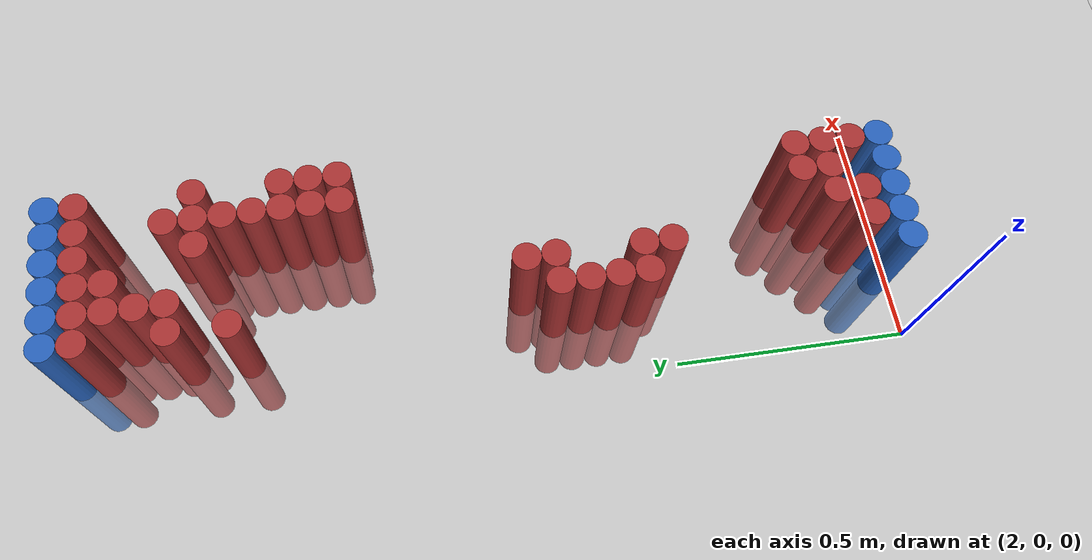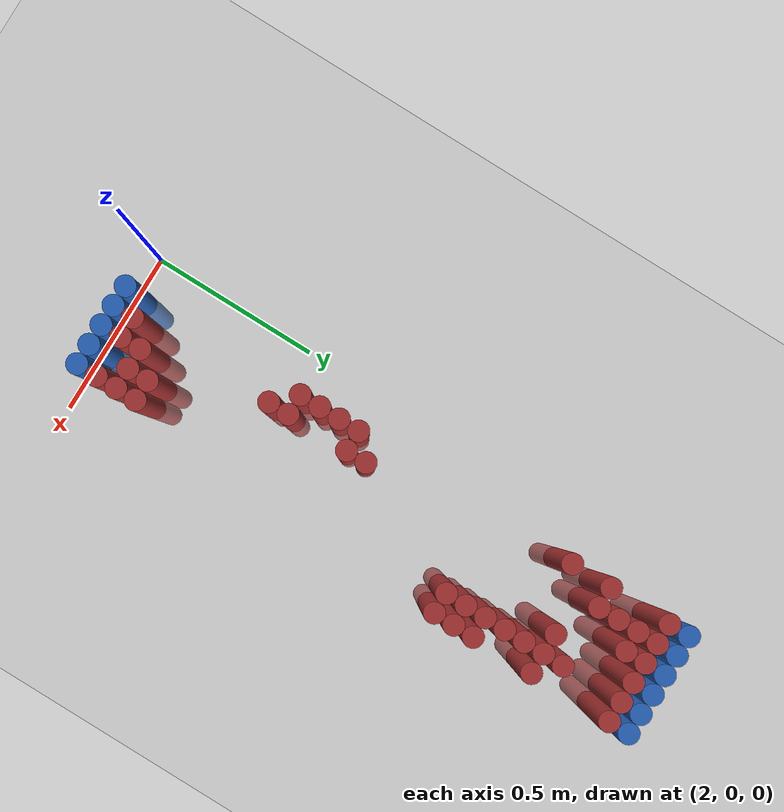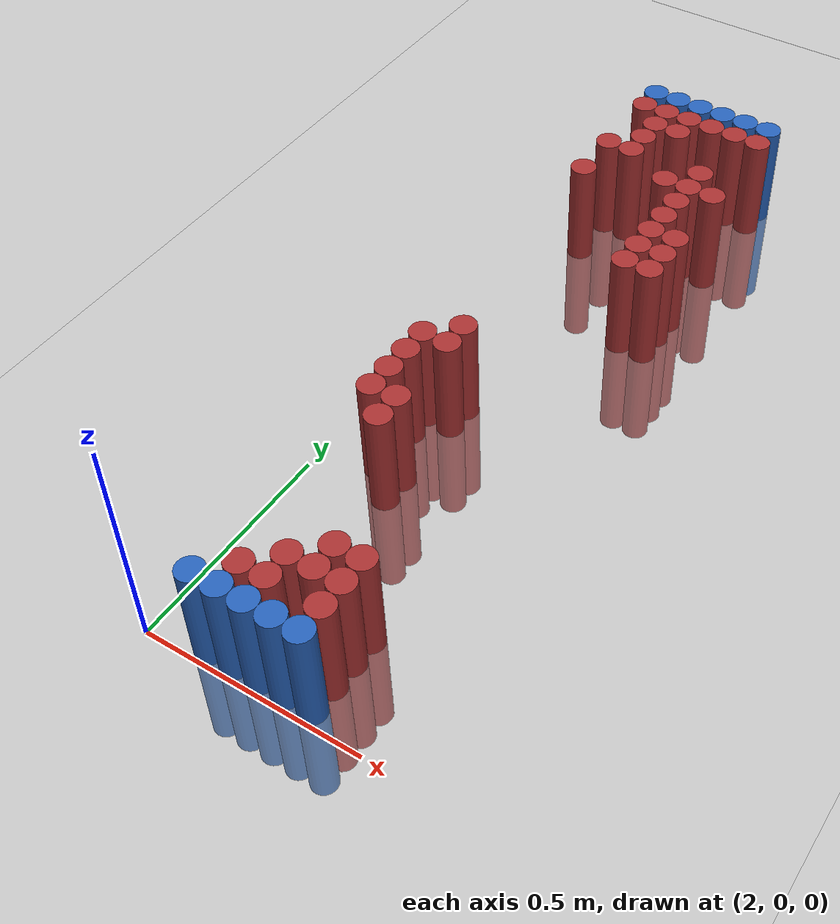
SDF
<sdf version="1.6">
 <world name="default">
  <model name="ground_plane">
   <static>1</static>
   <link name="link">
    <collision name="collision">
     <geometry><plane><normal>0 0 1</normal><size>100 100</size></plane></geometry>
     <surface><friction><ode><mu>100</mu><mu2>50</mu2></ode></friction></surface>
    </collision>
    <visual name="visual">
     <cast_shadows>0</cast_shadows>
     <geometry><plane><normal>0 0 1</normal><size>100 100</size></plane></geometry>
     <material>
      <script><uri>file://media/materials/scripts/gazebo.material</uri><name>Gazebo/Grey</name></script>
     </material>
    </visual>
   </link>
  </model>
  <model name="unit_cylinder_96">
   <static>1</static>
   <pose>2.130000 1.770000 0.000000 0.000000 0.000000 0.000000</pose>
   <link name="link">
    <inertial>
     <mass>1</mass>
     <inertia><ixx>0.145833</ixx><ixy>0</ixy><ixz>0</ixz><iyy>0.145833</iyy><iyz>0</iyz><izz>0.125</izz></inertia>
    </inertial>
    <collision name="collision">
     <geometry><cylinder><radius>0.030000</radius><length>0.5</length></cylinder></geometry>
    </collision>
    <visual name="visual">
     <geometry><cylinder><radius>0.030000</radius><length>0.5</length></cylinder></geometry>
     <material>
      <ambient>0.152000 0.379000 0.720000 1</ambient>
      <diffuse>0.152000 0.379000 0.720000 1</diffuse>
     </material>
     <material>
      <script><name>Gazebo/Grey</name><uri>file://media/materials/scripts/gazebo.material</uri></script>
     </material>
    </visual>
   </link>
  </model>
  <model name="unit_cylinder_97">
   <static>1</static>
   <pose>2.190000 1.770000 0.000000 0.000000 0.000000 0.000000</pose>
   <link name="link">
    <inertial>
     <mass>1</mass>
     <inertia><ixx>0.145833</ixx><ixy>0</ixy><ixz>0</ixz><iyy>0.145833</iyy><iyz>0</iyz><izz>0.125</izz></inertia>
    </inertial>
    <collision name="collision">
     <geometry><cylinder><radius>0.030000</radius><length>0.5</length></cylinder></geometry>
    </collision>
    <visual name="visual">
     <geometry><cylinder><radius>0.030000</radius><length>0.5</length></cylinder></geometry>
     <material>
      <ambient>0.152000 0.379000 0.720000 1</ambient>
      <diffuse>0.152000 0.379000 0.720000 1</diffuse>
     </material>
     <material>
      <script><name>Gazebo/Grey</name><uri>file://media/materials/scripts/gazebo.material</uri></script>
     </material>
    </visual>
   </link>
  </model>
  <model name="unit_cylinder_98">
   <static>1</static>
   <pose>2.250000 1.770000 0.000000 0.000000 0.000000 0.000000</pose>
   <link name="link">
    <inertial>
     <mass>1</mass>
     <inertia><ixx>0.145833</ixx><ixy>0</ixy><ixz>0</ixz><iyy>0.145833</iyy><iyz>0</iyz><izz>0.125</izz></inertia>
    </inertial>
    <collision name="collision">
     <geometry><cylinder><radius>0.030000</radius><length>0.5</length></cylinder></geometry>
    </collision>
    <visual name="visual">
     <geometry><cylinder><radius>0.030000</radius><length>0.5</length></cylinder></geometry>
     <material>
      <ambient>0.152000 0.379000 0.720000 1</ambient>
      <diffuse>0.152000 0.379000 0.720000 1</diffuse>
     </material>
     <material>
      <script><name>Gazebo/Grey</name><uri>file://media/materials/scripts/gazebo.material</uri></script>
     </material>
    </visual>
   </link>
  </model>
  <model name="unit_cylinder_99">
   <static>1</static>
   <pose>2.310000 1.770000 0.000000 0.000000 0.000000 0.000000</pose>
   <link name="link">
    <inertial>
     <mass>1</mass>
     <inertia><ixx>0.145833</ixx><ixy>0</ixy><ixz>0</ixz><iyy>0.145833</iyy><iyz>0</iyz><izz>0.125</izz></inertia>
    </inertial>
    <collision name="collision">
     <geometry><cylinder><radius>0.030000</radius><length>0.5</length></cylinder></geometry>
    </collision>
    <visual name="visual">
     <geometry><cylinder><radius>0.030000</radius><length>0.5</length></cylinder></geometry>
     <material>
      <ambient>0.152000 0.379000 0.720000 1</ambient>
      <diffuse>0.152000 0.379000 0.720000 1</diffuse>
     </material>
     <material>
      <script><name>Gazebo/Grey</name><uri>file://media/materials/scripts/gazebo.material</uri></script>
     </material>
    </visual>
   </link>
  </model>
  <model name="unit_cylinder_100">
   <static>1</static>
   <pose>2.370000 1.770000 0.000000 0.000000 0.000000 0.000000</pose>
   <link name="link">
    <inertial>
     <mass>1</mass>
     <inertia><ixx>0.145833</ixx><ixy>0</ixy><ixz>0</ixz><iyy>0.145833</iyy><iyz>0</iyz><izz>0.125</izz></inertia>
    </inertial>
    <collision name="collision">
     <geometry><cylinder><radius>0.030000</radius><length>0.5</length></cylinder></geometry>
    </collision>
    <visual name="visual">
     <geometry><cylinder><radius>0.030000</radius><length>0.5</length></cylinder></geometry>
     <material>
      <ambient>0.152000 0.379000 0.720000 1</ambient>
      <diffuse>0.152000 0.379000 0.720000 1</diffuse>
     </material>
     <material>
      <script><name>Gazebo/Grey</name><uri>file://media/materials/scripts/gazebo.material</uri></script>
     </material>
    </visual>
   </link>
  </model>
  <model name="unit_cylinder_101">
   <static>1</static>
   <pose>2.430000 1.770000 0.000000 0.000000 0.000000 0.000000</pose>
   <link name="link">
    <inertial>
     <mass>1</mass>
     <inertia><ixx>0.145833</ixx><ixy>0</ixy><ixz>0</ixz><iyy>0.145833</iyy><iyz>0</iyz><izz>0.125</izz></inertia>
    </inertial>
    <collision name="collision">
     <geometry><cylinder><radius>0.030000</radius><length>0.5</length></cylinder></geometry>
    </collision>
    <visual name="visual">
     <geometry><cylinder><radius>0.030000</radius><length>0.5</length></cylinder></geometry>
     <material>
      <ambient>0.152000 0.379000 0.720000 1</ambient>
      <diffuse>0.152000 0.379000 0.720000 1</diffuse>
     </material>
     <material>
      <script><name>Gazebo/Grey</name><uri>file://media/materials/scripts/gazebo.material</uri></script>
     </material>
    </visual>
   </link>
  </model>
  <model name="unit_cylinder_125">
   <static>1</static>
   <pose>2.130000 1.710000 0.000000 0.000000 0.000000 0.000000</pose>
   <link name="link">
    <inertial>
     <mass>1</mass>
     <inertia><ixx>0.145833</ixx><ixy>0</ixy><ixz>0</ixz><iyy>0.145833</iyy><iyz>0</iyz><izz>0.125</izz></inertia>
    </inertial>
    <collision name="collision">
     <geometry><cylinder><radius>0.030000</radius><length>0.5</length></cylinder></geometry>
    </collision>
    <visual name="visual">
     <geometry><cylinder><radius>0.030000</radius><length>0.5</length></cylinder></geometry>
     <material>
      <ambient>0.648000 0.192000 0.192000 1</ambient>
      <diffuse>0.648000 0.192000 0.192000 1</diffuse>
     </material>
     <material>
      <script><name>Gazebo/Grey</name><uri>file://media/materials/scripts/gazebo.material</uri></script>
     </material>
    </visual>
   </link>
  </model>
  <model name="unit_cylinder_126">
   <static>1</static>
   <pose>2.190000 1.710000 0.000000 0.000000 0.000000 0.000000</pose>
   <link name="link">
    <inertial>
     <mass>1</mass>
     <inertia><ixx>0.145833</ixx><ixy>0</ixy><ixz>0</ixz><iyy>0.145833</iyy><iyz>0</iyz><izz>0.125</izz></inertia>
    </inertial>
    <collision name="collision">
     <geometry><cylinder><radius>0.030000</radius><length>0.5</length></cylinder></geometry>
    </collision>
    <visual name="visual">
     <geometry><cylinder><radius>0.030000</radius><length>0.5</length></cylinder></geometry>
     <material>
      <ambient>0.648000 0.192000 0.192000 1</ambient>
      <diffuse>0.648000 0.192000 0.192000 1</diffuse>
     </material>
     <material>
      <script><name>Gazebo/Grey</name><uri>file://media/materials/scripts/gazebo.material</uri></script>
     </material>
    </visual>
   </link>
  </model>
  <model name="unit_cylinder_127">
   <static>1</static>
   <pose>2.250000 1.710000 0.000000 0.000000 0.000000 0.000000</pose>
   <link name="link">
    <inertial>
     <mass>1</mass>
     <inertia><ixx>0.145833</ixx><ixy>0</ixy><ixz>0</ixz><iyy>0.145833</iyy><iyz>0</iyz><izz>0.125</izz></inertia>
    </inertial>
    <collision name="collision">
     <geometry><cylinder><radius>0.030000</radius><length>0.5</length></cylinder></geometry>
    </collision>
    <visual name="visual">
     <geometry><cylinder><radius>0.030000</radius><length>0.5</length></cylinder></geometry>
     <material>
      <ambient>0.648000 0.192000 0.192000 1</ambient>
      <diffuse>0.648000 0.192000 0.192000 1</diffuse>
     </material>
     <material>
      <script><name>Gazebo/Grey</name><uri>file://media/materials/scripts/gazebo.material</uri></script>
     </material>
    </visual>
   </link>
  </model>
  <model name="unit_cylinder_128">
   <static>1</static>
   <pose>2.310000 1.710000 0.000000 0.000000 0.000000 0.000000</pose>
   <link name="link">
    <inertial>
     <mass>1</mass>
     <inertia><ixx>0.145833</ixx><ixy>0</ixy><ixz>0</ixz><iyy>0.145833</iyy><iyz>0</iyz><izz>0.125</izz></inertia>
    </inertial>
    <collision name="collision">
     <geometry><cylinder><radius>0.030000</radius><length>0.5</length></cylinder></geometry>
    </collision>
    <visual name="visual">
     <geometry><cylinder><radius>0.030000</radius><length>0.5</length></cylinder></geometry>
     <material>
      <ambient>0.648000 0.192000 0.192000 1</ambient>
      <diffuse>0.648000 0.192000 0.192000 1</diffuse>
     </material>
     <material>
      <script><name>Gazebo/Grey</name><uri>file://media/materials/scripts/gazebo.material</uri></script>
     </material>
    </visual>
   </link>
  </model>
  <model name="unit_cylinder_129">
   <static>1</static>
   <pose>2.370000 1.710000 0.000000 0.000000 0.000000 0.000000</pose>
   <link name="link">
    <inertial>
     <mass>1</mass>
     <inertia><ixx>0.145833</ixx><ixy>0</ixy><ixz>0</ixz><iyy>0.145833</iyy><iyz>0</iyz><izz>0.125</izz></inertia>
    </inertial>
    <collision name="collision">
     <geometry><cylinder><radius>0.030000</radius><length>0.5</length></cylinder></geometry>
    </collision>
    <visual name="visual">
     <geometry><cylinder><radius>0.030000</radius><length>0.5</length></cylinder></geometry>
     <material>
      <ambient>0.648000 0.192000 0.192000 1</ambient>
      <diffuse>0.648000 0.192000 0.192000 1</diffuse>
     </material>
     <material>
      <script><name>Gazebo/Grey</name><uri>file://media/materials/scripts/gazebo.material</uri></script>
     </material>
    </visual>
   </link>
  </model>
  <model name="unit_cylinder_130">
   <static>1</static>
   <pose>2.430000 1.710000 0.000000 0.000000 0.000000 0.000000</pose>
   <link name="link">
    <inertial>
     <mass>1</mass>
     <inertia><ixx>0.145833</ixx><ixy>0</ixy><ixz>0</ixz><iyy>0.145833</iyy><iyz>0</iyz><izz>0.125</izz></inertia>
    </inertial>
    <collision name="collision">
     <geometry><cylinder><radius>0.030000</radius><length>0.5</length></cylinder></geometry>
    </collision>
    <visual name="visual">
     <geometry><cylinder><radius>0.030000</radius><length>0.5</length></cylinder></geometry>
     <material>
      <ambient>0.648000 0.192000 0.192000 1</ambient>
      <diffuse>0.648000 0.192000 0.192000 1</diffuse>
     </material>
     <material>
      <script><name>Gazebo/Grey</name><uri>file://media/materials/scripts/gazebo.material</uri></script>
     </material>
    </visual>
   </link>
  </model>
  <model name="unit_cylinder_144">
   <static>1</static>
   <pose>2.190000 1.650000 0.000000 0.000000 0.000000 0.000000</pose>
   <link name="link">
    <inertial>
     <mass>1</mass>
     <inertia><ixx>0.145833</ixx><ixy>0</ixy><ixz>0</ixz><iyy>0.145833</iyy><iyz>0</iyz><izz>0.125</izz></inertia>
    </inertial>
    <collision name="collision">
     <geometry><cylinder><radius>0.030000</radius><length>0.5</length></cylinder></geometry>
    </collision>
    <visual name="visual">
     <geometry><cylinder><radius>0.030000</radius><length>0.5</length></cylinder></geometry>
     <material>
      <ambient>0.648000 0.192000 0.192000 1</ambient>
      <diffuse>0.648000 0.192000 0.192000 1</diffuse>
     </material>
     <material>
      <script><name>Gazebo/Grey</name><uri>file://media/materials/scripts/gazebo.material</uri></script>
     </material>
    </visual>
   </link>
  </model>
  <model name="unit_cylinder_145">
   <static>1</static>
   <pose>2.250000 1.650000 0.000000 0.000000 0.000000 0.000000</pose>
   <link name="link">
    <inertial>
     <mass>1</mass>
     <inertia><ixx>0.145833</ixx><ixy>0</ixy><ixz>0</ixz><iyy>0.145833</iyy><iyz>0</iyz><izz>0.125</izz></inertia>
    </inertial>
    <collision name="collision">
     <geometry><cylinder><radius>0.030000</radius><length>0.5</length></cylinder></geometry>
    </collision>
    <visual name="visual">
     <geometry><cylinder><radius>0.030000</radius><length>0.5</length></cylinder></geometry>
     <material>
      <ambient>0.648000 0.192000 0.192000 1</ambient>
      <diffuse>0.648000 0.192000 0.192000 1</diffuse>
     </material>
     <material>
      <script><name>Gazebo/Grey</name><uri>file://media/materials/scripts/gazebo.material</uri></script>
     </material>
    </visual>
   </link>
  </model>
  <model name="unit_cylinder_152">
   <static>1</static>
   <pose>2.190000 1.590000 0.000000 0.000000 0.000000 0.000000</pose>
   <link name="link">
    <inertial>
     <mass>1</mass>
     <inertia><ixx>0.145833</ixx><ixy>0</ixy><ixz>0</ixz><iyy>0.145833</iyy><iyz>0</iyz><izz>0.125</izz></inertia>
    </inertial>
    <collision name="collision">
     <geometry><cylinder><radius>0.030000</radius><length>0.5</length></cylinder></geometry>
    </collision>
    <visual name="visual">
     <geometry><cylinder><radius>0.030000</radius><length>0.5</length></cylinder></geometry>
     <material>
      <ambient>0.648000 0.192000 0.192000 1</ambient>
      <diffuse>0.648000 0.192000 0.192000 1</diffuse>
     </material>
     <material>
      <script><name>Gazebo/Grey</name><uri>file://media/materials/scripts/gazebo.material</uri></script>
     </material>
    </visual>
   </link>
  </model>
  <model name="unit_cylinder_159">
   <static>1</static>
   <pose>2.130000 1.530000 0.000000 0.000000 0.000000 0.000000</pose>
   <link name="link">
    <inertial>
     <mass>1</mass>
     <inertia><ixx>0.145833</ixx><ixy>0</ixy><ixz>0</ixz><iyy>0.145833</iyy><iyz>0</iyz><izz>0.125</izz></inertia>
    </inertial>
    <collision name="collision">
     <geometry><cylinder><radius>0.030000</radius><length>0.5</length></cylinder></geometry>
    </collision>
    <visual name="visual">
     <geometry><cylinder><radius>0.030000</radius><length>0.5</length></cylinder></geometry>
     <material>
      <ambient>0.648000 0.192000 0.192000 1</ambient>
      <diffuse>0.648000 0.192000 0.192000 1</diffuse>
     </material>
     <material>
      <script><name>Gazebo/Grey</name><uri>file://media/materials/scripts/gazebo.material</uri></script>
     </material>
    </visual>
   </link>
  </model>
  <model name="unit_cylinder_160">
   <static>1</static>
   <pose>2.190000 1.530000 0.000000 0.000000 0.000000 0.000000</pose>
   <link name="link">
    <inertial>
     <mass>1</mass>
     <inertia><ixx>0.145833</ixx><ixy>0</ixy><ixz>0</ixz><iyy>0.145833</iyy><iyz>0</iyz><izz>0.125</izz></inertia>
    </inertial>
    <collision name="collision">
     <geometry><cylinder><radius>0.030000</radius><length>0.5</length></cylinder></geometry>
    </collision>
    <visual name="visual">
     <geometry><cylinder><radius>0.030000</radius><length>0.5</length></cylinder></geometry>
     <material>
      <ambient>0.648000 0.192000 0.192000 1</ambient>
      <diffuse>0.648000 0.192000 0.192000 1</diffuse>
     </material>
     <material>
      <script><name>Gazebo/Grey</name><uri>file://media/materials/scripts/gazebo.material</uri></script>
     </material>
    </visual>
   </link>
  </model>
  <model name="unit_cylinder_161">
   <static>1</static>
   <pose>2.370000 1.530000 0.000000 0.000000 0.000000 0.000000</pose>
   <link name="link">
    <inertial>
     <mass>1</mass>
     <inertia><ixx>0.145833</ixx><ixy>0</ixy><ixz>0</ixz><iyy>0.145833</iyy><iyz>0</iyz><izz>0.125</izz></inertia>
    </inertial>
    <collision name="collision">
     <geometry><cylinder><radius>0.030000</radius><length>0.5</length></cylinder></geometry>
    </collision>
    <visual name="visual">
     <geometry><cylinder><radius>0.030000</radius><length>0.5</length></cylinder></geometry>
     <material>
      <ambient>0.648000 0.192000 0.192000 1</ambient>
      <diffuse>0.648000 0.192000 0.192000 1</diffuse>
     </material>
     <material>
      <script><name>Gazebo/Grey</name><uri>file://media/materials/scripts/gazebo.material</uri></script>
     </material>
    </visual>
   </link>
  </model>
  <model name="unit_cylinder_168">
   <static>1</static>
   <pose>2.310000 1.470000 0.000000 0.000000 0.000000 0.000000</pose>
   <link name="link">
    <inertial>
     <mass>1</mass>
     <inertia><ixx>0.145833</ixx><ixy>0</ixy><ixz>0</ixz><iyy>0.145833</iyy><iyz>0</iyz><izz>0.125</izz></inertia>
    </inertial>
    <collision name="collision">
     <geometry><cylinder><radius>0.030000</radius><length>0.5</length></cylinder></geometry>
    </collision>
    <visual name="visual">
     <geometry><cylinder><radius>0.030000</radius><length>0.5</length></cylinder></geometry>
     <material>
      <ambient>0.648000 0.192000 0.192000 1</ambient>
      <diffuse>0.648000 0.192000 0.192000 1</diffuse>
     </material>
     <material>
      <script><name>Gazebo/Grey</name><uri>file://media/materials/scripts/gazebo.material</uri></script>
     </material>
    </visual>
   </link>
  </model>
  <model name="unit_cylinder_169">
   <static>1</static>
   <pose>2.370000 1.470000 0.000000 0.000000 0.000000 0.000000</pose>
   <link name="link">
    <inertial>
     <mass>1</mass>
     <inertia><ixx>0.145833</ixx><ixy>0</ixy><ixz>0</ixz><iyy>0.145833</iyy><iyz>0</iyz><izz>0.125</izz></inertia>
    </inertial>
    <collision name="collision">
     <geometry><cylinder><radius>0.030000</radius><length>0.5</length></cylinder></geometry>
    </collision>
    <visual name="visual">
     <geometry><cylinder><radius>0.030000</radius><length>0.5</length></cylinder></geometry>
     <material>
      <ambient>0.648000 0.192000 0.192000 1</ambient>
      <diffuse>0.648000 0.192000 0.192000 1</diffuse>
     </material>
     <material>
      <script><name>Gazebo/Grey</name><uri>file://media/materials/scripts/gazebo.material</uri></script>
     </material>
    </visual>
   </link>
  </model>
  <model name="unit_cylinder_170">
   <static>1</static>
   <pose>2.430000 1.470000 0.000000 0.000000 0.000000 0.000000</pose>
   <link name="link">
    <inertial>
     <mass>1</mass>
     <inertia><ixx>0.145833</ixx><ixy>0</ixy><ixz>0</ixz><iyy>0.145833</iyy><iyz>0</iyz><izz>0.125</izz></inertia>
    </inertial>
    <collision name="collision">
     <geometry><cylinder><radius>0.030000</radius><length>0.5</length></cylinder></geometry>
    </collision>
    <visual name="visual">
     <geometry><cylinder><radius>0.030000</radius><length>0.5</length></cylinder></geometry>
     <material>
      <ambient>0.648000 0.192000 0.192000 1</ambient>
      <diffuse>0.648000 0.192000 0.192000 1</diffuse>
     </material>
     <material>
      <script><name>Gazebo/Grey</name><uri>file://media/materials/scripts/gazebo.material</uri></script>
     </material>
    </visual>
   </link>
  </model>
  <model name="unit_cylinder_175">
   <static>1</static>
   <pose>2.130000 1.410000 0.000000 0.000000 0.000000 0.000000</pose>
   <link name="link">
    <inertial>
     <mass>1</mass>
     <inertia><ixx>0.145833</ixx><ixy>0</ixy><ixz>0</ixz><iyy>0.145833</iyy><iyz>0</iyz><izz>0.125</izz></inertia>
    </inertial>
    <collision name="collision">
     <geometry><cylinder><radius>0.030000</radius><length>0.5</length></cylinder></geometry>
    </collision>
    <visual name="visual">
     <geometry><cylinder><radius>0.030000</radius><length>0.5</length></cylinder></geometry>
     <material>
      <ambient>0.648000 0.192000 0.192000 1</ambient>
      <diffuse>0.648000 0.192000 0.192000 1</diffuse>
     </material>
     <material>
      <script><name>Gazebo/Grey</name><uri>file://media/materials/scripts/gazebo.material</uri></script>
     </material>
    </visual>
   </link>
  </model>
  <model name="unit_cylinder_176">
   <static>1</static>
   <pose>2.370000 1.410000 0.000000 0.000000 0.000000 0.000000</pose>
   <link name="link">
    <inertial>
     <mass>1</mass>
     <inertia><ixx>0.145833</ixx><ixy>0</ixy><ixz>0</ixz><iyy>0.145833</iyy><iyz>0</iyz><izz>0.125</izz></inertia>
    </inertial>
    <collision name="collision">
     <geometry><cylinder><radius>0.030000</radius><length>0.5</length></cylinder></geometry>
    </collision>
    <visual name="visual">
     <geometry><cylinder><radius>0.030000</radius><length>0.5</length></cylinder></geometry>
     <material>
      <ambient>0.648000 0.192000 0.192000 1</ambient>
      <diffuse>0.648000 0.192000 0.192000 1</diffuse>
     </material>
     <material>
      <script><name>Gazebo/Grey</name><uri>file://media/materials/scripts/gazebo.material</uri></script>
     </material>
    </visual>
   </link>
  </model>
  <model name="unit_cylinder_182">
   <static>1</static>
   <pose>2.370000 1.350000 0.000000 0.000000 0.000000 0.000000</pose>
   <link name="link">
    <inertial>
     <mass>1</mass>
     <inertia><ixx>0.145833</ixx><ixy>0</ixy><ixz>0</ixz><iyy>0.145833</iyy><iyz>0</iyz><izz>0.125</izz></inertia>
    </inertial>
    <collision name="collision">
     <geometry><cylinder><radius>0.030000</radius><length>0.5</length></cylinder></geometry>
    </collision>
    <visual name="visual">
     <geometry><cylinder><radius>0.030000</radius><length>0.5</length></cylinder></geometry>
     <material>
      <ambient>0.648000 0.192000 0.192000 1</ambient>
      <diffuse>0.648000 0.192000 0.192000 1</diffuse>
     </material>
     <material>
      <script><name>Gazebo/Grey</name><uri>file://media/materials/scripts/gazebo.material</uri></script>
     </material>
    </visual>
   </link>
  </model>
  <model name="unit_cylinder_186">
   <static>1</static>
   <pose>2.370000 1.290000 0.000000 0.000000 0.000000 0.000000</pose>
   <link name="link">
    <inertial>
     <mass>1</mass>
     <inertia><ixx>0.145833</ixx><ixy>0</ixy><ixz>0</ixz><iyy>0.145833</iyy><iyz>0</iyz><izz>0.125</izz></inertia>
    </inertial>
    <collision name="collision">
     <geometry><cylinder><radius>0.030000</radius><length>0.5</length></cylinder></geometry>
    </collision>
    <visual name="visual">
     <geometry><cylinder><radius>0.030000</radius><length>0.5</length></cylinder></geometry>
     <material>
      <ambient>0.648000 0.192000 0.192000 1</ambient>
      <diffuse>0.648000 0.192000 0.192000 1</diffuse>
     </material>
     <material>
      <script><name>Gazebo/Grey</name><uri>file://media/materials/scripts/gazebo.material</uri></script>
     </material>
    </visual>
   </link>
  </model>
  <model name="unit_cylinder_187">
   <static>1</static>
   <pose>2.430000 1.290000 0.000000 0.000000 0.000000 0.000000</pose>
   <link name="link">
    <inertial>
     <mass>1</mass>
     <inertia><ixx>0.145833</ixx><ixy>0</ixy><ixz>0</ixz><iyy>0.145833</iyy><iyz>0</iyz><izz>0.125</izz></inertia>
    </inertial>
    <collision name="collision">
     <geometry><cylinder><radius>0.030000</radius><length>0.5</length></cylinder></geometry>
    </collision>
    <visual name="visual">
     <geometry><cylinder><radius>0.030000</radius><length>0.5</length></cylinder></geometry>
     <material>
      <ambient>0.648000 0.192000 0.192000 1</ambient>
      <diffuse>0.648000 0.192000 0.192000 1</diffuse>
     </material>
     <material>
      <script><name>Gazebo/Grey</name><uri>file://media/materials/scripts/gazebo.material</uri></script>
     </material>
    </visual>
   </link>
  </model>
  <model name="unit_cylinder_191">
   <static>1</static>
   <pose>2.370000 1.230000 0.000000 0.000000 0.000000 0.000000</pose>
   <link name="link">
    <inertial>
     <mass>1</mass>
     <inertia><ixx>0.145833</ixx><ixy>0</ixy><ixz>0</ixz><iyy>0.145833</iyy><iyz>0</iyz><izz>0.125</izz></inertia>
    </inertial>
    <collision name="collision">
     <geometry><cylinder><radius>0.030000</radius><length>0.5</length></cylinder></geometry>
    </collision>
    <visual name="visual">
     <geometry><cylinder><radius>0.030000</radius><length>0.5</length></cylinder></geometry>
     <material>
      <ambient>0.648000 0.192000 0.192000 1</ambient>
      <diffuse>0.648000 0.192000 0.192000 1</diffuse>
     </material>
     <material>
      <script><name>Gazebo/Grey</name><uri>file://media/materials/scripts/gazebo.material</uri></script>
     </material>
    </visual>
   </link>
  </model>
  <model name="unit_cylinder_192">
   <static>1</static>
   <pose>2.430000 1.230000 0.000000 0.000000 0.000000 0.000000</pose>
   <link name="link">
    <inertial>
     <mass>1</mass>
     <inertia><ixx>0.145833</ixx><ixy>0</ixy><ixz>0</ixz><iyy>0.145833</iyy><iyz>0</iyz><izz>0.125</izz></inertia>
    </inertial>
    <collision name="collision">
     <geometry><cylinder><radius>0.030000</radius><length>0.5</length></cylinder></geometry>
    </collision>
    <visual name="visual">
     <geometry><cylinder><radius>0.030000</radius><length>0.5</length></cylinder></geometry>
     <material>
      <ambient>0.648000 0.192000 0.192000 1</ambient>
      <diffuse>0.648000 0.192000 0.192000 1</diffuse>
     </material>
     <material>
      <script><name>Gazebo/Grey</name><uri>file://media/materials/scripts/gazebo.material</uri></script>
     </material>
    </visual>
   </link>
  </model>
  <model name="unit_cylinder_193">
   <static>1</static>
   <pose>2.370000 1.170000 0.000000 0.000000 0.000000 0.000000</pose>
   <link name="link">
    <inertial>
     <mass>1</mass>
     <inertia><ixx>0.145833</ixx><ixy>0</ixy><ixz>0</ixz><iyy>0.145833</iyy><iyz>0</iyz><izz>0.125</izz></inertia>
    </inertial>
    <collision name="collision">
     <geometry><cylinder><radius>0.030000</radius><length>0.5</length></cylinder></geometry>
    </collision>
    <visual name="visual">
     <geometry><cylinder><radius>0.030000</radius><length>0.5</length></cylinder></geometry>
     <material>
      <ambient>0.648000 0.192000 0.192000 1</ambient>
      <diffuse>0.648000 0.192000 0.192000 1</diffuse>
     </material>
     <material>
      <script><name>Gazebo/Grey</name><uri>file://media/materials/scripts/gazebo.material</uri></script>
     </material>
    </visual>
   </link>
  </model>
  <model name="unit_cylinder_194">
   <static>1</static>
   <pose>2.430000 1.170000 0.000000 0.000000 0.000000 0.000000</pose>
   <link name="link">
    <inertial>
     <mass>1</mass>
     <inertia><ixx>0.145833</ixx><ixy>0</ixy><ixz>0</ixz><iyy>0.145833</iyy><iyz>0</iyz><izz>0.125</izz></inertia>
    </inertial>
    <collision name="collision">
     <geometry><cylinder><radius>0.030000</radius><length>0.5</length></cylinder></geometry>
    </collision>
    <visual name="visual">
     <geometry><cylinder><radius>0.030000</radius><length>0.5</length></cylinder></geometry>
     <material>
      <ambient>0.648000 0.192000 0.192000 1</ambient>
      <diffuse>0.648000 0.192000 0.192000 1</diffuse>
     </material>
     <material>
      <script><name>Gazebo/Grey</name><uri>file://media/materials/scripts/gazebo.material</uri></script>
     </material>
    </visual>
   </link>
  </model>
  <model name="unit_cylinder_201">
   <static>1</static>
   <pose>2.190000 0.810000 0.000000 0.000000 0.000000 0.000000</pose>
   <link name="link">
    <inertial>
     <mass>1</mass>
     <inertia><ixx>0.145833</ixx><ixy>0</ixy><ixz>0</ixz><iyy>0.145833</iyy><iyz>0</iyz><izz>0.125</izz></inertia>
    </inertial>
    <collision name="collision">
     <geometry><cylinder><radius>0.030000</radius><length>0.5</length></cylinder></geometry>
    </collision>
    <visual name="visual">
     <geometry><cylinder><radius>0.030000</radius><length>0.5</length></cylinder></geometry>
     <material>
      <ambient>0.648000 0.192000 0.192000 1</ambient>
      <diffuse>0.648000 0.192000 0.192000 1</diffuse>
     </material>
     <material>
      <script><name>Gazebo/Grey</name><uri>file://media/materials/scripts/gazebo.material</uri></script>
     </material>
    </visual>
   </link>
  </model>
  <model name="unit_cylinder_204">
   <static>1</static>
   <pose>2.130000 0.750000 0.000000 0.000000 0.000000 0.000000</pose>
   <link name="link">
    <inertial>
     <mass>1</mass>
     <inertia><ixx>0.145833</ixx><ixy>0</ixy><ixz>0</ixz><iyy>0.145833</iyy><iyz>0</iyz><izz>0.125</izz></inertia>
    </inertial>
    <collision name="collision">
     <geometry><cylinder><radius>0.030000</radius><length>0.5</length></cylinder></geometry>
    </collision>
    <visual name="visual">
     <geometry><cylinder><radius>0.030000</radius><length>0.5</length></cylinder></geometry>
     <material>
      <ambient>0.648000 0.192000 0.192000 1</ambient>
      <diffuse>0.648000 0.192000 0.192000 1</diffuse>
     </material>
     <material>
      <script><name>Gazebo/Grey</name><uri>file://media/materials/scripts/gazebo.material</uri></script>
     </material>
    </visual>
   </link>
  </model>
  <model name="unit_cylinder_205">
   <static>1</static>
   <pose>2.190000 0.750000 0.000000 0.000000 0.000000 0.000000</pose>
   <link name="link">
    <inertial>
     <mass>1</mass>
     <inertia><ixx>0.145833</ixx><ixy>0</ixy><ixz>0</ixz><iyy>0.145833</iyy><iyz>0</iyz><izz>0.125</izz></inertia>
    </inertial>
    <collision name="collision">
     <geometry><cylinder><radius>0.030000</radius><length>0.5</length></cylinder></geometry>
    </collision>
    <visual name="visual">
     <geometry><cylinder><radius>0.030000</radius><length>0.5</length></cylinder></geometry>
     <material>
      <ambient>0.648000 0.192000 0.192000 1</ambient>
      <diffuse>0.648000 0.192000 0.192000 1</diffuse>
     </material>
     <material>
      <script><name>Gazebo/Grey</name><uri>file://media/materials/scripts/gazebo.material</uri></script>
     </material>
    </visual>
   </link>
  </model>
  <model name="unit_cylinder_209">
   <static>1</static>
   <pose>2.130000 0.690000 0.000000 0.000000 0.000000 0.000000</pose>
   <link name="link">
    <inertial>
     <mass>1</mass>
     <inertia><ixx>0.145833</ixx><ixy>0</ixy><ixz>0</ixz><iyy>0.145833</iyy><iyz>0</iyz><izz>0.125</izz></inertia>
    </inertial>
    <collision name="collision">
     <geometry><cylinder><radius>0.030000</radius><length>0.5</length></cylinder></geometry>
    </collision>
    <visual name="visual">
     <geometry><cylinder><radius>0.030000</radius><length>0.5</length></cylinder></geometry>
     <material>
      <ambient>0.648000 0.192000 0.192000 1</ambient>
      <diffuse>0.648000 0.192000 0.192000 1</diffuse>
     </material>
     <material>
      <script><name>Gazebo/Grey</name><uri>file://media/materials/scripts/gazebo.material</uri></script>
     </material>
    </visual>
   </link>
  </model>
  <model name="unit_cylinder_211">
   <static>1</static>
   <pose>2.130000 0.630000 0.000000 0.000000 0.000000 0.000000</pose>
   <link name="link">
    <inertial>
     <mass>1</mass>
     <inertia><ixx>0.145833</ixx><ixy>0</ixy><ixz>0</ixz><iyy>0.145833</iyy><iyz>0</iyz><izz>0.125</izz></inertia>
    </inertial>
    <collision name="collision">
     <geometry><cylinder><radius>0.030000</radius><length>0.5</length></cylinder></geometry>
    </collision>
    <visual name="visual">
     <geometry><cylinder><radius>0.030000</radius><length>0.5</length></cylinder></geometry>
     <material>
      <ambient>0.648000 0.192000 0.192000 1</ambient>
      <diffuse>0.648000 0.192000 0.192000 1</diffuse>
     </material>
     <material>
      <script><name>Gazebo/Grey</name><uri>file://media/materials/scripts/gazebo.material</uri></script>
     </material>
    </visual>
   </link>
  </model>
  <model name="unit_cylinder_212">
   <static>1</static>
   <pose>2.130000 0.570000 0.000000 0.000000 0.000000 0.000000</pose>
   <link name="link">
    <inertial>
     <mass>1</mass>
     <inertia><ixx>0.145833</ixx><ixy>0</ixy><ixz>0</ixz><iyy>0.145833</iyy><iyz>0</iyz><izz>0.125</izz></inertia>
    </inertial>
    <collision name="collision">
     <geometry><cylinder><radius>0.030000</radius><length>0.5</length></cylinder></geometry>
    </collision>
    <visual name="visual">
     <geometry><cylinder><radius>0.030000</radius><length>0.5</length></cylinder></geometry>
     <material>
      <ambient>0.648000 0.192000 0.192000 1</ambient>
      <diffuse>0.648000 0.192000 0.192000 1</diffuse>
     </material>
     <material>
      <script><name>Gazebo/Grey</name><uri>file://media/materials/scripts/gazebo.material</uri></script>
     </material>
    </visual>
   </link>
  </model>
  <model name="unit_cylinder_213">
   <static>1</static>
   <pose>2.190000 0.570000 0.000000 0.000000 0.000000 0.000000</pose>
   <link name="link">
    <inertial>
     <mass>1</mass>
     <inertia><ixx>0.145833</ixx><ixy>0</ixy><ixz>0</ixz><iyy>0.145833</iyy><iyz>0</iyz><izz>0.125</izz></inertia>
    </inertial>
    <collision name="collision">
     <geometry><cylinder><radius>0.030000</radius><length>0.5</length></cylinder></geometry>
    </collision>
    <visual name="visual">
     <geometry><cylinder><radius>0.030000</radius><length>0.5</length></cylinder></geometry>
     <material>
      <ambient>0.648000 0.192000 0.192000 1</ambient>
      <diffuse>0.648000 0.192000 0.192000 1</diffuse>
     </material>
     <material>
      <script><name>Gazebo/Grey</name><uri>file://media/materials/scripts/gazebo.material</uri></script>
     </material>
    </visual>
   </link>
  </model>
  <model name="unit_cylinder_214">
   <static>1</static>
   <pose>2.190000 0.510000 0.000000 0.000000 0.000000 0.000000</pose>
   <link name="link">
    <inertial>
     <mass>1</mass>
     <inertia><ixx>0.145833</ixx><ixy>0</ixy><ixz>0</ixz><iyy>0.145833</iyy><iyz>0</iyz><izz>0.125</izz></inertia>
    </inertial>
    <collision name="collision">
     <geometry><cylinder><radius>0.030000</radius><length>0.5</length></cylinder></geometry>
    </collision>
    <visual name="visual">
     <geometry><cylinder><radius>0.030000</radius><length>0.5</length></cylinder></geometry>
     <material>
      <ambient>0.648000 0.192000 0.192000 1</ambient>
      <diffuse>0.648000 0.192000 0.192000 1</diffuse>
     </material>
     <material>
      <script><name>Gazebo/Grey</name><uri>file://media/materials/scripts/gazebo.material</uri></script>
     </material>
    </visual>
   </link>
  </model>
  <model name="unit_cylinder_243">
   <static>1</static>
   <pose>2.310000 0.210000 0.000000 0.000000 0.000000 0.000000</pose>
   <link name="link">
    <inertial>
     <mass>1</mass>
     <inertia><ixx>0.145833</ixx><ixy>0</ixy><ixz>0</ixz><iyy>0.145833</iyy><iyz>0</iyz><izz>0.125</izz></inertia>
    </inertial>
    <collision name="collision">
     <geometry><cylinder><radius>0.030000</radius><length>0.5</length></cylinder></geometry>
    </collision>
    <visual name="visual">
     <geometry><cylinder><radius>0.030000</radius><length>0.5</length></cylinder></geometry>
     <material>
      <ambient>0.648000 0.192000 0.192000 1</ambient>
      <diffuse>0.648000 0.192000 0.192000 1</diffuse>
     </material>
     <material>
      <script><name>Gazebo/Grey</name><uri>file://media/materials/scripts/gazebo.material</uri></script>
     </material>
    </visual>
   </link>
  </model>
  <model name="unit_cylinder_244">
   <static>1</static>
   <pose>2.370000 0.210000 0.000000 0.000000 0.000000 0.000000</pose>
   <link name="link">
    <inertial>
     <mass>1</mass>
     <inertia><ixx>0.145833</ixx><ixy>0</ixy><ixz>0</ixz><iyy>0.145833</iyy><iyz>0</iyz><izz>0.125</izz></inertia>
    </inertial>
    <collision name="collision">
     <geometry><cylinder><radius>0.030000</radius><length>0.5</length></cylinder></geometry>
    </collision>
    <visual name="visual">
     <geometry><cylinder><radius>0.030000</radius><length>0.5</length></cylinder></geometry>
     <material>
      <ambient>0.648000 0.192000 0.192000 1</ambient>
      <diffuse>0.648000 0.192000 0.192000 1</diffuse>
     </material>
     <material>
      <script><name>Gazebo/Grey</name><uri>file://media/materials/scripts/gazebo.material</uri></script>
     </material>
    </visual>
   </link>
  </model>
  <model name="unit_cylinder_246">
   <static>1</static>
   <pose>2.250000 0.150000 0.000000 0.000000 0.000000 0.000000</pose>
   <link name="link">
    <inertial>
     <mass>1</mass>
     <inertia><ixx>0.145833</ixx><ixy>0</ixy><ixz>0</ixz><iyy>0.145833</iyy><iyz>0</iyz><izz>0.125</izz></inertia>
    </inertial>
    <collision name="collision">
     <geometry><cylinder><radius>0.030000</radius><length>0.5</length></cylinder></geometry>
    </collision>
    <visual name="visual">
     <geometry><cylinder><radius>0.030000</radius><length>0.5</length></cylinder></geometry>
     <material>
      <ambient>0.648000 0.192000 0.192000 1</ambient>
      <diffuse>0.648000 0.192000 0.192000 1</diffuse>
     </material>
     <material>
      <script><name>Gazebo/Grey</name><uri>file://media/materials/scripts/gazebo.material</uri></script>
     </material>
    </visual>
   </link>
  </model>
  <model name="unit_cylinder_247">
   <static>1</static>
   <pose>2.310000 0.150000 0.000000 0.000000 0.000000 0.000000</pose>
   <link name="link">
    <inertial>
     <mass>1</mass>
     <inertia><ixx>0.145833</ixx><ixy>0</ixy><ixz>0</ixz><iyy>0.145833</iyy><iyz>0</iyz><izz>0.125</izz></inertia>
    </inertial>
    <collision name="collision">
     <geometry><cylinder><radius>0.030000</radius><length>0.5</length></cylinder></geometry>
    </collision>
    <visual name="visual">
     <geometry><cylinder><radius>0.030000</radius><length>0.5</length></cylinder></geometry>
     <material>
      <ambient>0.648000 0.192000 0.192000 1</ambient>
      <diffuse>0.648000 0.192000 0.192000 1</diffuse>
     </material>
     <material>
      <script><name>Gazebo/Grey</name><uri>file://media/materials/scripts/gazebo.material</uri></script>
     </material>
    </visual>
   </link>
  </model>
  <model name="unit_cylinder_248">
   <static>1</static>
   <pose>2.370000 0.150000 0.000000 0.000000 0.000000 0.000000</pose>
   <link name="link">
    <inertial>
     <mass>1</mass>
     <inertia><ixx>0.145833</ixx><ixy>0</ixy><ixz>0</ixz><iyy>0.145833</iyy><iyz>0</iyz><izz>0.125</izz></inertia>
    </inertial>
    <collision name="collision">
     <geometry><cylinder><radius>0.030000</radius><length>0.5</length></cylinder></geometry>
    </collision>
    <visual name="visual">
     <geometry><cylinder><radius>0.030000</radius><length>0.5</length></cylinder></geometry>
     <material>
      <ambient>0.648000 0.192000 0.192000 1</ambient>
      <diffuse>0.648000 0.192000 0.192000 1</diffuse>
     </material>
     <material>
      <script><name>Gazebo/Grey</name><uri>file://media/materials/scripts/gazebo.material</uri></script>
     </material>
    </visual>
   </link>
  </model>
  <model name="unit_cylinder_254">
   <static>1</static>
   <pose>2.190000 0.090000 0.000000 0.000000 0.000000 0.000000</pose>
   <link name="link">
    <inertial>
     <mass>1</mass>
     <inertia><ixx>0.145833</ixx><ixy>0</ixy><ixz>0</ixz><iyy>0.145833</iyy><iyz>0</iyz><izz>0.125</izz></inertia>
    </inertial>
    <collision name="collision">
     <geometry><cylinder><radius>0.030000</radius><length>0.5</length></cylinder></geometry>
    </collision>
    <visual name="visual">
     <geometry><cylinder><radius>0.030000</radius><length>0.5</length></cylinder></geometry>
     <material>
      <ambient>0.648000 0.192000 0.192000 1</ambient>
      <diffuse>0.648000 0.192000 0.192000 1</diffuse>
     </material>
     <material>
      <script><name>Gazebo/Grey</name><uri>file://media/materials/scripts/gazebo.material</uri></script>
     </material>
    </visual>
   </link>
  </model>
  <model name="unit_cylinder_255">
   <static>1</static>
   <pose>2.250000 0.090000 0.000000 0.000000 0.000000 0.000000</pose>
   <link name="link">
    <inertial>
     <mass>1</mass>
     <inertia><ixx>0.145833</ixx><ixy>0</ixy><ixz>0</ixz><iyy>0.145833</iyy><iyz>0</iyz><izz>0.125</izz></inertia>
    </inertial>
    <collision name="collision">
     <geometry><cylinder><radius>0.030000</radius><length>0.5</length></cylinder></geometry>
    </collision>
    <visual name="visual">
     <geometry><cylinder><radius>0.030000</radius><length>0.5</length></cylinder></geometry>
     <material>
      <ambient>0.648000 0.192000 0.192000 1</ambient>
      <diffuse>0.648000 0.192000 0.192000 1</diffuse>
     </material>
     <material>
      <script><name>Gazebo/Grey</name><uri>file://media/materials/scripts/gazebo.material</uri></script>
     </material>
    </visual>
   </link>
  </model>
  <model name="unit_cylinder_256">
   <static>1</static>
   <pose>2.370000 0.090000 0.000000 0.000000 0.000000 0.000000</pose>
   <link name="link">
    <inertial>
     <mass>1</mass>
     <inertia><ixx>0.145833</ixx><ixy>0</ixy><ixz>0</ixz><iyy>0.145833</iyy><iyz>0</iyz><izz>0.125</izz></inertia>
    </inertial>
    <collision name="collision">
     <geometry><cylinder><radius>0.030000</radius><length>0.5</length></cylinder></geometry>
    </collision>
    <visual name="visual">
     <geometry><cylinder><radius>0.030000</radius><length>0.5</length></cylinder></geometry>
     <material>
      <ambient>0.648000 0.192000 0.192000 1</ambient>
      <diffuse>0.648000 0.192000 0.192000 1</diffuse>
     </material>
     <material>
      <script><name>Gazebo/Grey</name><uri>file://media/materials/scripts/gazebo.material</uri></script>
     </material>
    </visual>
   </link>
  </model>
  <model name="unit_cylinder_273">
   <static>1</static>
   <pose>2.130000 0.030000 0.000000 0.000000 0.000000 0.000000</pose>
   <link name="link">
    <inertial>
     <mass>1</mass>
     <inertia><ixx>0.145833</ixx><ixy>0</ixy><ixz>0</ixz><iyy>0.145833</iyy><iyz>0</iyz><izz>0.125</izz></inertia>
    </inertial>
    <collision name="collision">
     <geometry><cylinder><radius>0.030000</radius><length>0.5</length></cylinder></geometry>
    </collision>
    <visual name="visual">
     <geometry><cylinder><radius>0.030000</radius><length>0.5</length></cylinder></geometry>
     <material>
      <ambient>0.152000 0.379000 0.720000 1</ambient>
      <diffuse>0.152000 0.379000 0.720000 1</diffuse>
     </material>
     <material>
      <script><name>Gazebo/Grey</name><uri>file://media/materials/scripts/gazebo.material</uri></script>
     </material>
    </visual>
   </link>
  </model>
  <model name="unit_cylinder_274">
   <static>1</static>
   <pose>2.190000 0.030000 0.000000 0.000000 0.000000 0.000000</pose>
   <link name="link">
    <inertial>
     <mass>1</mass>
     <inertia><ixx>0.145833</ixx><ixy>0</ixy><ixz>0</ixz><iyy>0.145833</iyy><iyz>0</iyz><izz>0.125</izz></inertia>
    </inertial>
    <collision name="collision">
     <geometry><cylinder><radius>0.030000</radius><length>0.5</length></cylinder></geometry>
    </collision>
    <visual name="visual">
     <geometry><cylinder><radius>0.030000</radius><length>0.5</length></cylinder></geometry>
     <material>
      <ambient>0.152000 0.379000 0.720000 1</ambient>
      <diffuse>0.152000 0.379000 0.720000 1</diffuse>
     </material>
     <material>
      <script><name>Gazebo/Grey</name><uri>file://media/materials/scripts/gazebo.material</uri></script>
     </material>
    </visual>
   </link>
  </model>
  <model name="unit_cylinder_275">
   <static>1</static>
   <pose>2.250000 0.030000 0.000000 0.000000 0.000000 0.000000</pose>
   <link name="link">
    <inertial>
     <mass>1</mass>
     <inertia><ixx>0.145833</ixx><ixy>0</ixy><ixz>0</ixz><iyy>0.145833</iyy><iyz>0</iyz><izz>0.125</izz></inertia>
    </inertial>
    <collision name="collision">
     <geometry><cylinder><radius>0.030000</radius><length>0.5</length></cylinder></geometry>
    </collision>
    <visual name="visual">
     <geometry><cylinder><radius>0.030000</radius><length>0.5</length></cylinder></geometry>
     <material>
      <ambient>0.152000 0.379000 0.720000 1</ambient>
      <diffuse>0.152000 0.379000 0.720000 1</diffuse>
     </material>
     <material>
      <script><name>Gazebo/Grey</name><uri>file://media/materials/scripts/gazebo.material</uri></script>
     </material>
    </visual>
   </link>
  </model>
  <model name="unit_cylinder_276">
   <static>1</static>
   <pose>2.310000 0.030000 0.000000 0.000000 0.000000 0.000000</pose>
   <link name="link">
    <inertial>
     <mass>1</mass>
     <inertia><ixx>0.145833</ixx><ixy>0</ixy><ixz>0</ixz><iyy>0.145833</iyy><iyz>0</iyz><izz>0.125</izz></inertia>
    </inertial>
    <collision name="collision">
     <geometry><cylinder><radius>0.030000</radius><length>0.5</length></cylinder></geometry>
    </collision>
    <visual name="visual">
     <geometry><cylinder><radius>0.030000</radius><length>0.5</length></cylinder></geometry>
     <material>
      <ambient>0.152000 0.379000 0.720000 1</ambient>
      <diffuse>0.152000 0.379000 0.720000 1</diffuse>
     </material>
     <material>
      <script><name>Gazebo/Grey</name><uri>file://media/materials/scripts/gazebo.material</uri></script>
     </material>
    </visual>
   </link>
  </model>
  <model name="unit_cylinder_277">
   <static>1</static>
   <pose>2.370000 0.030000 0.000000 0.000000 0.000000 0.000000</pose>
   <link name="link">
    <inertial>
     <mass>1</mass>
     <inertia><ixx>0.145833</ixx><ixy>0</ixy><ixz>0</ixz><iyy>0.145833</iyy><iyz>0</iyz><izz>0.125</izz></inertia>
    </inertial>
    <collision name="collision">
     <geometry><cylinder><radius>0.030000</radius><length>0.5</length></cylinder></geometry>
    </collision>
    <visual name="visual">
     <geometry><cylinder><radius>0.030000</radius><length>0.5</length></cylinder></geometry>
     <material>
      <ambient>0.152000 0.379000 0.720000 1</ambient>
      <diffuse>0.152000 0.379000 0.720000 1</diffuse>
     </material>
     <material>
      <script><name>Gazebo/Grey</name><uri>file://media/materials/scripts/gazebo.material</uri></script>
     </material>
    </visual>
   </link>
  </model>
 </world>
</sdf>
